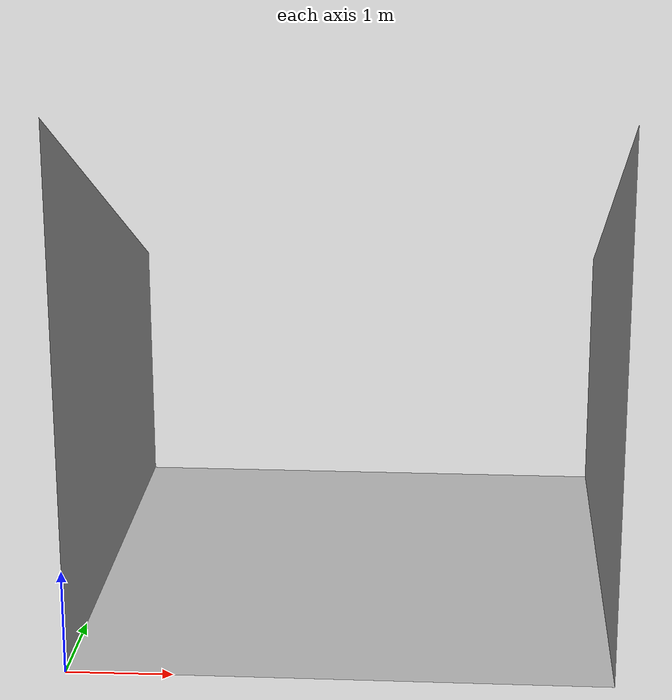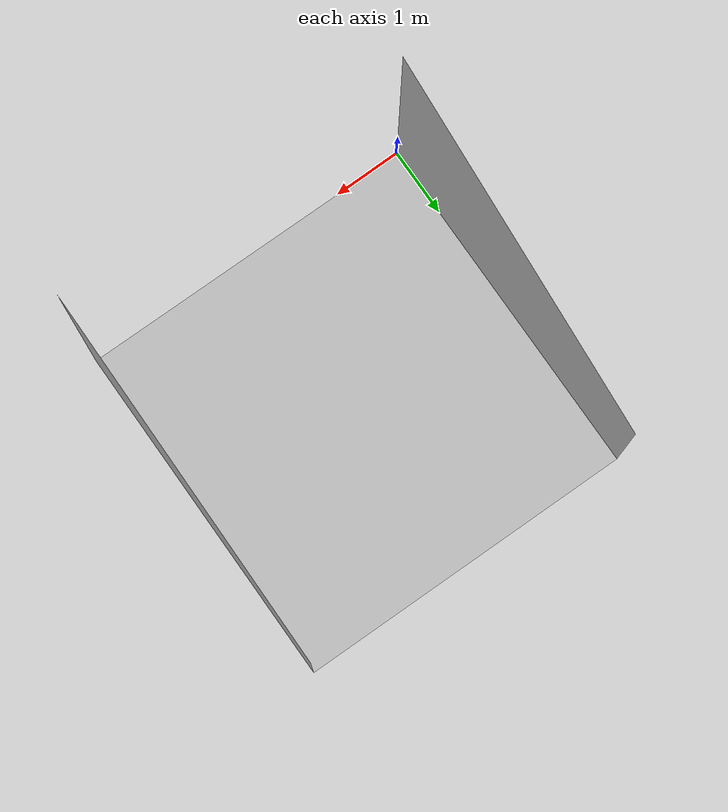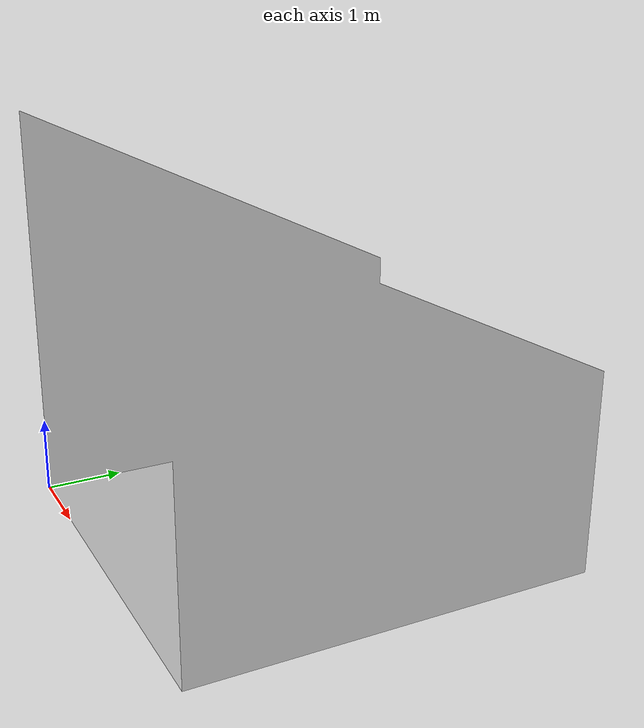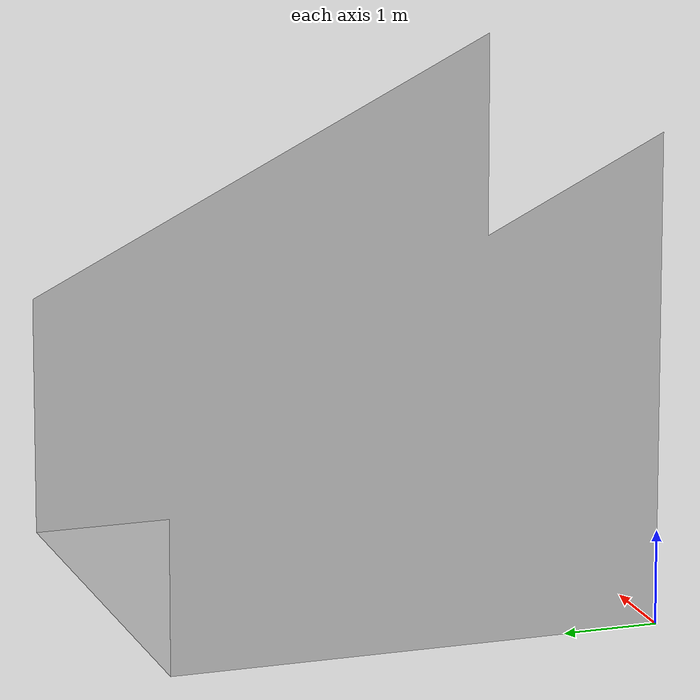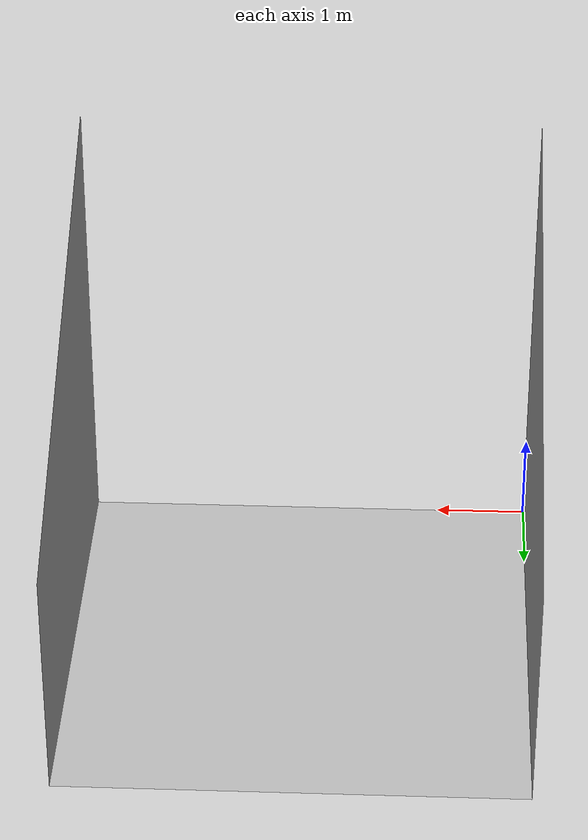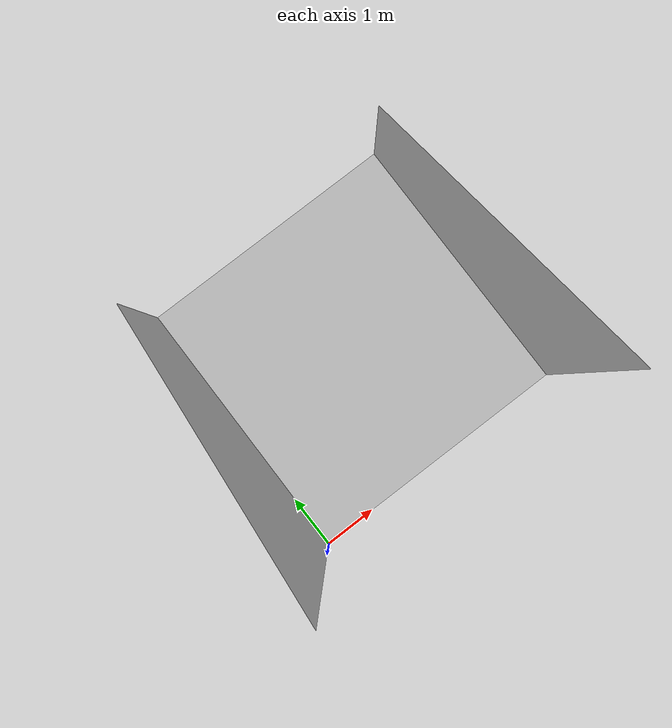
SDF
<sdf version="1.5">
  <model name="fishing_net">
    <link name="fishing_net_link">
      <static>false</static>
      <collision name="fishing_net">
        <pose>0 0 0 0 0 0</pose>
        <geometry>
          <mesh>
            <uri>model://fishing_net/meshes/fishing_net.dae</uri>
            <scale>1 1 1</scale>
          </mesh>
        </geometry>
      </collision>

      <visual name="fishing_net">
        <pose>0 0 0 0 0 0</pose>
        <cast_shadows>false</cast_shadows>
        <geometry>
          <mesh>
            <uri>model://fishing_net/meshes/fishing_net.dae</uri>
            <scale>1 1 1</scale>
          </mesh>
        </geometry>
      </visual>
      <kinematic>1</kinematic>
     </link>
  </model>
</sdf>
